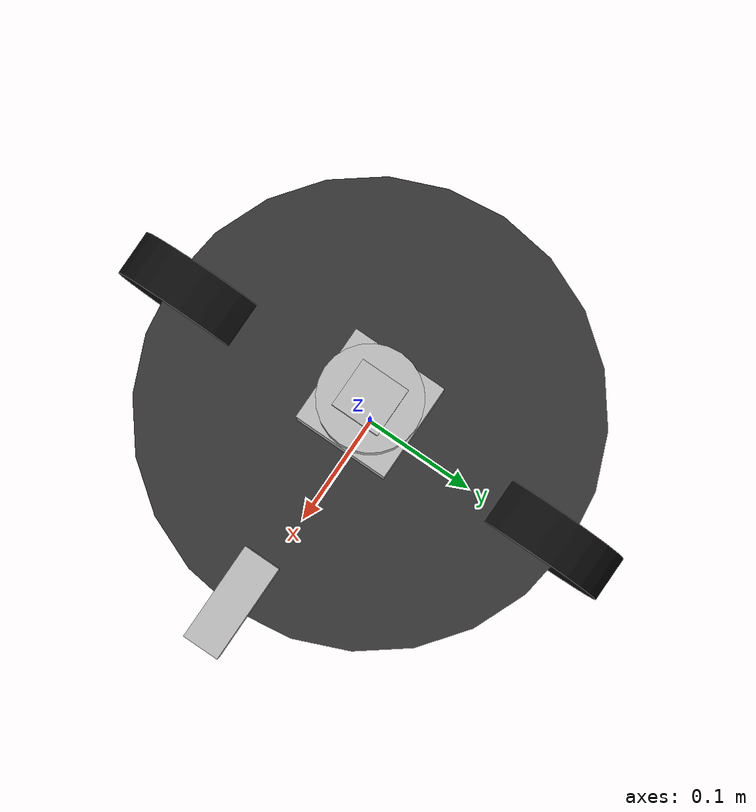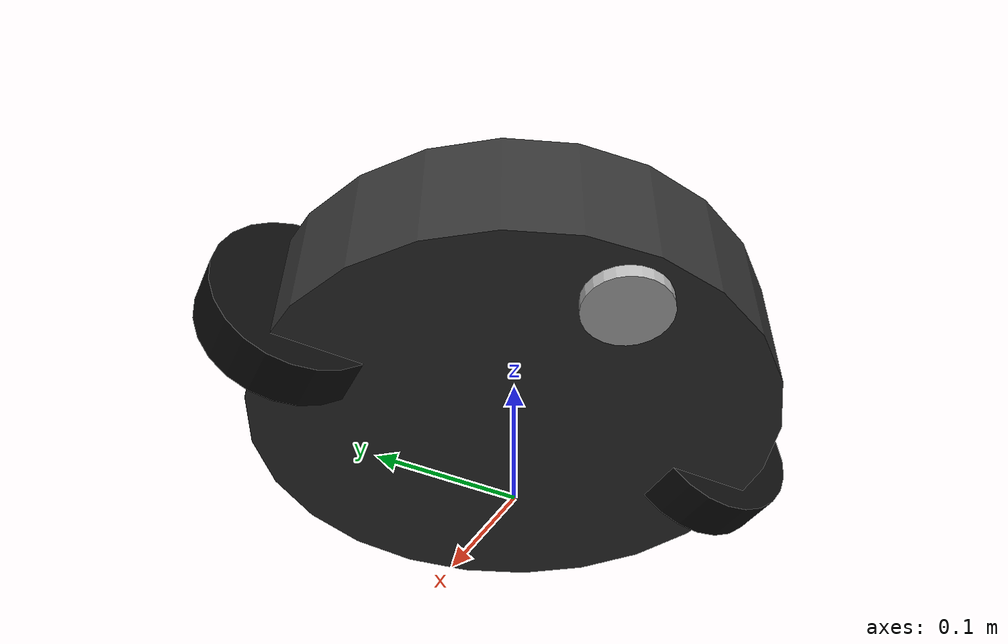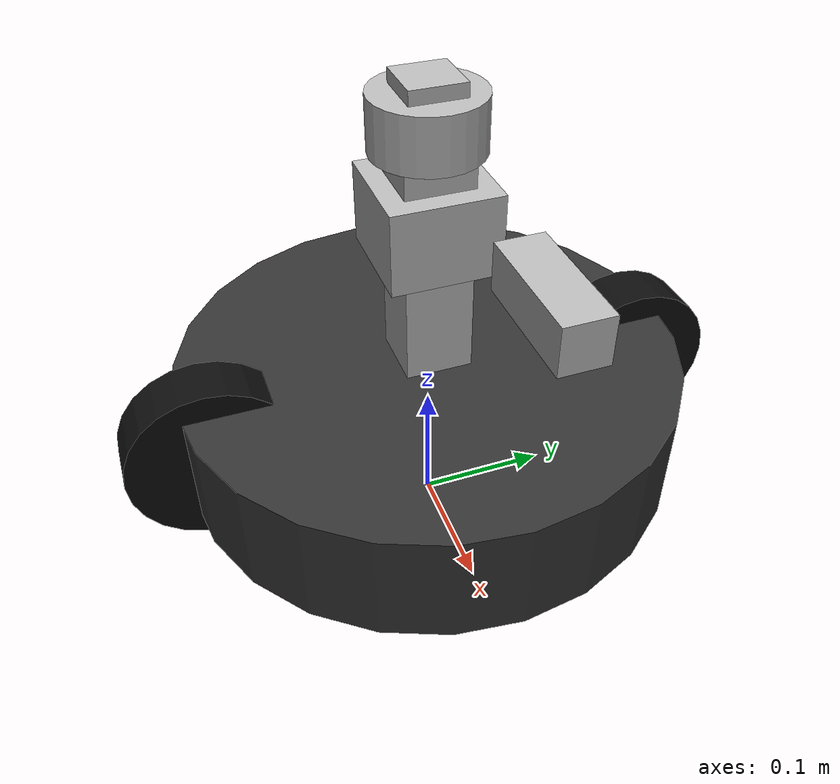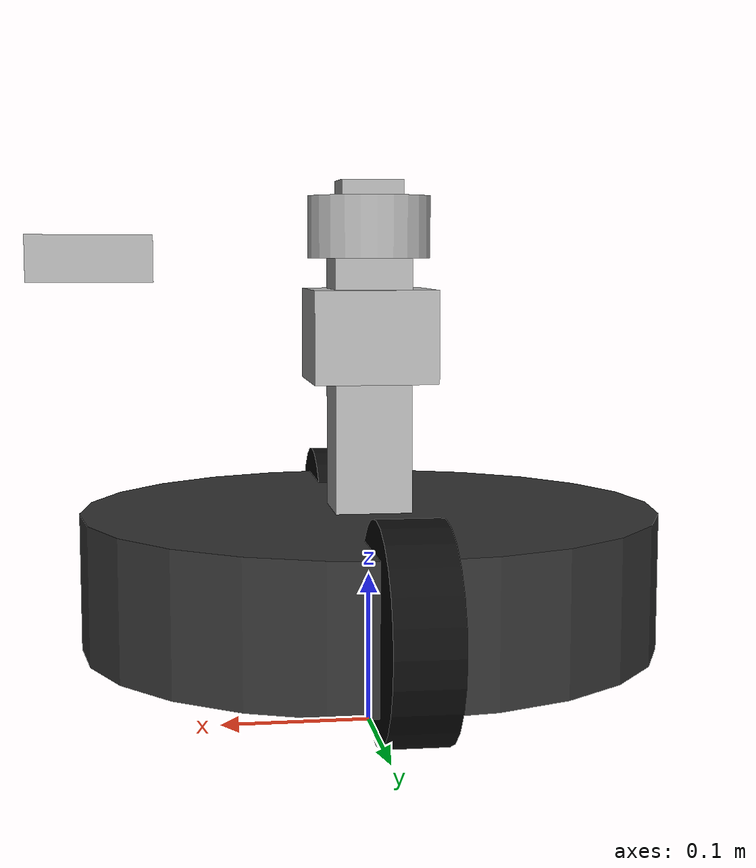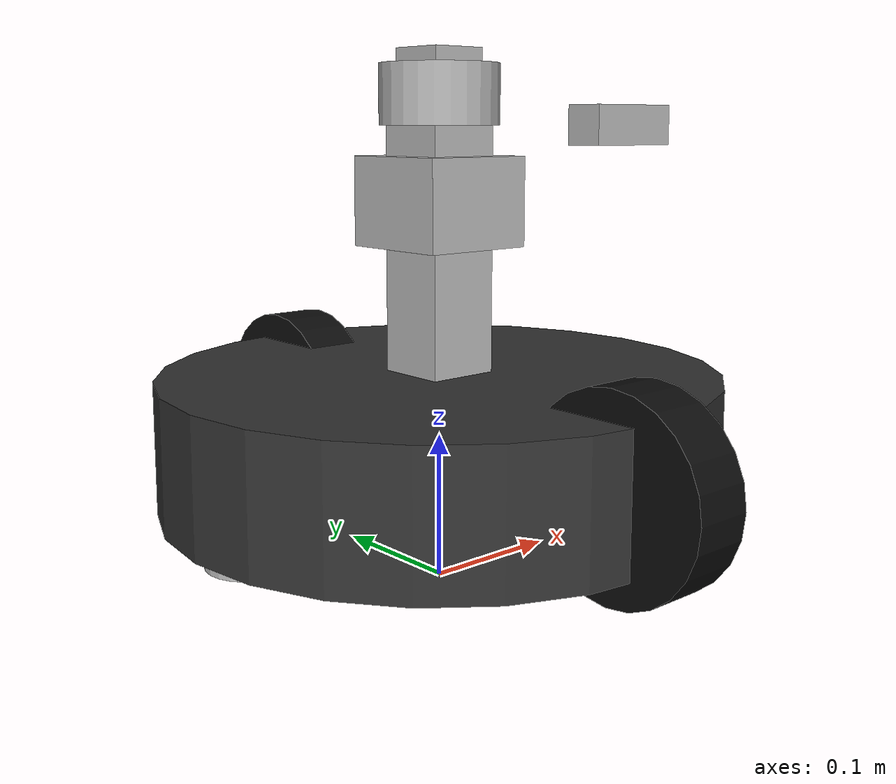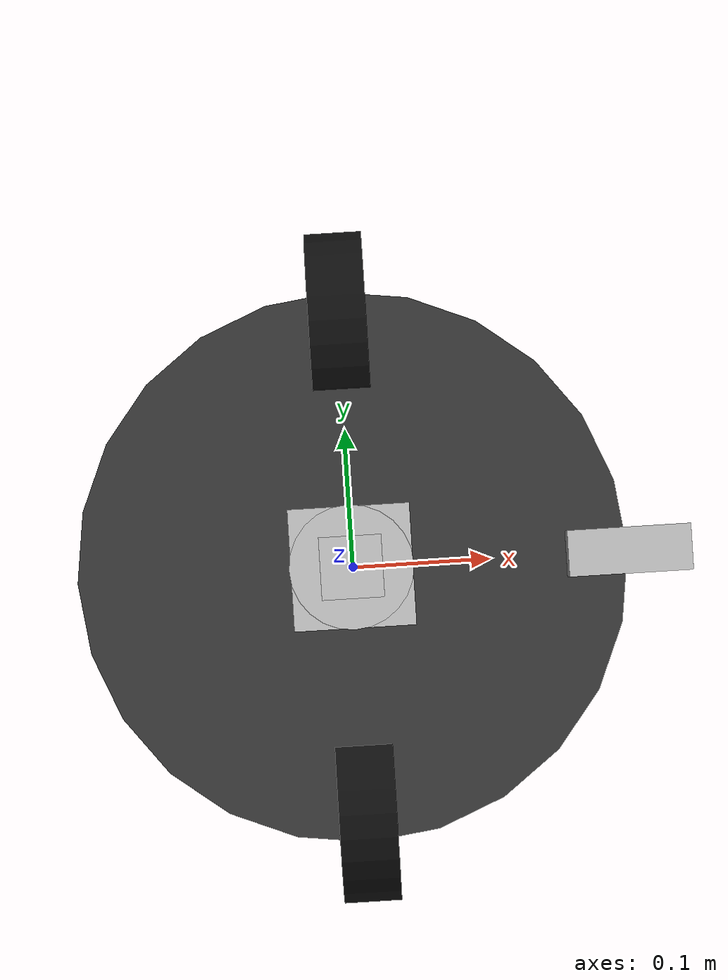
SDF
<?xml version="1.0"?>
<sdf version="1.8">
  <model name="atlas_robot">
    <static>false</static>
    <allow_auto_disable>true</allow_auto_disable>
    <pose>0 0 0.1 0 0 0</pose>

    <!-- Base -->
    <link name="base_link">
      <inertial>
        <mass>10.0</mass>
        <inertia>
          <ixx>0.05</ixx><iyy>0.05</iyy><izz>0.06</izz>
          <ixy>0</ixy><ixz>0</ixz><iyz>0</iyz>
        </inertia>
      </inertial>
      <visual name="base_vis">
        <geometry><cylinder><radius>0.19</radius><length>0.09</length></cylinder></geometry>
        <material><ambient>0.2 0.2 0.2 1</ambient><diffuse>0.2 0.2 0.2 1</diffuse></material>
      </visual>
      <collision name="base_col">
        <geometry><cylinder><radius>0.19</radius><length>0.09</length></cylinder></geometry>
      </collision>
    </link>

    <!-- Wheels -->
    <link name="left_wheel_link">
      <pose>0 0.17 0 0 1.5708 0</pose>
      <visual name="lwheel_vis">
        <geometry><cylinder><radius>0.065</radius><length>0.04</length></cylinder></geometry>
        <material><ambient>0.05 0.05 0.05 1</ambient><diffuse>0.05 0.05 0.05 1</diffuse></material>
      </visual>
      <collision name="lwheel_col">
        <geometry><cylinder><radius>0.065</radius><length>0.04</length></cylinder></geometry>
      </collision>
      <inertial><mass>1.0</mass><inertia><ixx>0.002</ixx><iyy>0.002</iyy><izz>0.002</izz><ixy>0</ixy><ixz>0</ixz><iyz>0</iyz></inertia></inertial>
    </link>
    <link name="right_wheel_link">
      <pose>0 -0.17 0 0 1.5708 0</pose>
      <visual name="rwheel_vis">
        <geometry><cylinder><radius>0.065</radius><length>0.04</length></cylinder></geometry>
        <material><ambient>0.05 0.05 0.05 1</ambient><diffuse>0.05 0.05 0.05 1</diffuse></material>
      </visual>
      <collision name="rwheel_col">
        <geometry><cylinder><radius>0.065</radius><length>0.04</length></cylinder></geometry>
      </collision>
      <inertial><mass>1.0</mass><inertia><ixx>0.002</ixx><iyy>0.002</iyy><izz>0.002</izz><ixy>0</ixy><ixz>0</ixz><iyz>0</iyz></inertia></inertial>
    </link>

    <joint name="left_wheel_joint" type="revolute">
      <parent>base_link</parent><child>left_wheel_link</child>
      <axis><xyz>0 1 0</xyz><limit><lower>-1e16</lower><upper>1e16</upper></limit><dynamics><damping>0.1</damping></dynamics></axis>
    </joint>
    <joint name="right_wheel_joint" type="revolute">
      <parent>base_link</parent><child>right_wheel_link</child>
      <axis><xyz>0 1 0</xyz><limit><lower>-1e16</lower><upper>1e16</upper></limit><dynamics><damping>0.1</damping></dynamics></axis>
    </joint>

    <!-- Caster (visual only) -->
    <link name="caster_link">
      <pose>-0.15 0 -0.045 0 0 0</pose>
      <visual name="caster_vis"><geometry><cylinder><radius>0.03</radius><length>0.02</length></cylinder></geometry></visual>
      <inertial><mass>0.1</mass><inertia><ixx>0.0001</ixx><iyy>0.0001</iyy><izz>0.0001</izz><ixy>0</ixy><ixz>0</ixz><iyz>0</iyz></inertia></inertial>
    </link>
    <joint name="caster_fixed" type="fixed"><parent>base_link</parent><child>caster_link</child></joint>

    <!-- Diff drive system -->
    <plugin name="ignition::gazebo::systems::DiffDrive"
            filename="ignition-gazebo-diff-drive-system">
      <left_joint>left_wheel_joint</left_joint>
      <right_joint>right_wheel_joint</right_joint>
      <wheel_separation>0.34</wheel_separation>
      <wheel_radius>0.065</wheel_radius>
      <odom_publish_frequency>30</odom_publish_frequency>
      <cmd_vel_topic>/cmd_vel</cmd_vel_topic>
      <odom_topic>/odom</odom_topic>
      <use_velocity_commands>true</use_velocity_commands>
    </plugin>

    <!-- Lidar on mast -->
    <link name="lidar_link">
      <pose>0 0 0.23 0 0 0</pose>
      <visual name="lidar_body"><geometry><cylinder><radius>0.04</radius><length>0.04</length></cylinder></geometry></visual>
      <collision name="lidar_body"><geometry><cylinder><radius>0.04</radius><length>0.04</length></cylinder></geometry></collision>
      <sensor name="lidar" type="gpu_lidar">
        <topic>/lidar/scan</topic>
        <update_rate>10</update_rate>
        <ray>
          <scan>
            <horizontal>
              <samples>720</samples>
              <resolution>1</resolution>
              <min_angle>-3.141592</min_angle>
              <max_angle>3.141592</max_angle>
            </horizontal>
          </scan>
          <range><min>0.15</min><max>12.0</max><resolution>0.01</resolution></range>
        </ray>
        <noise><type>gaussian</type><mean>0.0</mean><stddev>0.005</stddev></noise>
      </sensor>
    </link>
    <joint name="lidar_fixed" type="fixed"><parent>base_link</parent><child>lidar_link</child></joint>

    <!-- RGB-D camera front -->
    <link name="camera_link">
      <pose>0.18 0 0.21 0 0 0</pose>
      <visual name="cam_body"><geometry><box><size>0.08 0.03 0.03</size></box></geometry></visual>
      <collision name="cam_body"><geometry><box><size>0.08 0.03 0.03</size></box></geometry></collision>
      <sensor name="front_rgbd" type="rgbd_camera">
        <topic>/camera</topic>
        <update_rate>30</update_rate>
        <camera>
          <horizontal_fov>1.204277</horizontal_fov>
          <image><width>640</width><height>480</height><format>R8G8B8</format></image>
          <clip><near>0.1</near><far>25.0</far></clip>
        </camera>
        <noise><type>gaussian</type><mean>0.0</mean><stddev>0.002</stddev></noise>
      </sensor>
    </link>
    <joint name="camera_fixed" type="fixed"><parent>base_link</parent><child>camera_link</child></joint>

    <!-- Arm base -->
    <link name="arm_base_link">
      <pose>0 0 0.16 0 0 0</pose>
      <visual name="arm_base"><geometry><box><size>0.08 0.08 0.06</size></box></geometry></visual>
      <collision name="arm_base"><geometry><box><size>0.08 0.08 0.06</size></box></geometry></collision>
    </link>
    <joint name="arm_base_fixed" type="fixed"><parent>base_link</parent><child>arm_base_link</child></joint>

    <!-- Shoulder pitch -->
    <link name="arm_link1">
      <pose>0 0 0.12 0 0 0</pose>
      <visual name="arm_l1"><geometry><box><size>0.05 0.05 0.18</size></box></geometry></visual>
      <collision name="arm_l1"><geometry><box><size>0.05 0.05 0.18</size></box></geometry></collision>
    </link>
    <joint name="shoulder_pitch" type="revolute">
      <parent>arm_base_link</parent><child>arm_link1</child>
      <axis><xyz>0 1 0</xyz><limit><lower>-1.0472</lower><upper>1.5708</upper></limit><dynamics><damping>5.0</damping></dynamics></axis>
    </joint>

    <!-- Elbow pitch -->
    <link name="arm_link2">
      <pose>0 0 0.18 0 0 0</pose>
      <visual name="arm_l2"><geometry><box><size>0.04 0.04 0.16</size></box></geometry></visual>
      <collision name="arm_l2"><geometry><box><size>0.04 0.04 0.16</size></box></geometry></collision>
    </link>
    <joint name="elbow_pitch" type="revolute">
      <parent>arm_link1</parent><child>arm_link2</child>
      <axis><xyz>0 1 0</xyz><limit><lower>-1.5708</lower><upper>1.5708</upper></limit><dynamics><damping>4.0</damping></dynamics></axis>
    </joint>

    <!-- Gripper mount & fingers -->
    <link name="grip_mount">
      <pose>0 0 0.10 0 0 0</pose>
      <visual name="mount"><geometry><box><size>0.04 0.04 0.04</size></box></geometry></visual>
      <collision name="mount"><geometry><box><size>0.04 0.04 0.04</size></box></geometry></collision>
    </link>
    <joint name="wrist_fixed" type="fixed"><parent>arm_link2</parent><child>grip_mount</child></joint>

    <link name="gripper_left">
      <pose>-0.015 0.035 0 0 0 0</pose>
      <visual name="left_f"><geometry><box><size>0.02 0.06 0.02</size></box></geometry></visual>
      <collision name="left_f"><geometry><box><size>0.02 0.06 0.02</size></box></geometry></collision>
    </link>
    <link name="gripper_right">
      <pose>0.015 -0.035 0 0 0 0</pose>
      <visual name="right_f"><geometry><box><size>0.02 0.06 0.02</size></box></geometry></visual>
      <collision name="right_f"><geometry><box><size>0.02 0.06 0.02</size></box></geometry></collision>
    </link>

    <joint name="gripper_left_slide" type="prismatic">
      <parent>grip_mount</parent><child>gripper_left</child>
      <axis><xyz>1 0 0</xyz><limit><lower>-0.02</lower><upper>0.02</upper></limit></axis>
    </joint>
    <joint name="gripper_right_slide" type="prismatic">
      <parent>grip_mount</parent><child>gripper_right</child>
      <axis><xyz>-1 0 0</xyz><limit><lower>-0.02</lower><upper>0.02</upper></limit></axis>
    </joint>

    <!-- Hold the joints at 0 unless commanded -->
    <plugin name="ignition::gazebo::systems::JointPositionController"
            filename="ignition-gazebo-joint-position-controller-system">
      <joint_name>shoulder_pitch</joint_name>
      <joint_name>elbow_pitch</joint_name>
      <joint_name>gripper_left_slide</joint_name>
      <joint_name>gripper_right_slide</joint_name>
    </plugin>
  </model>
</sdf>
